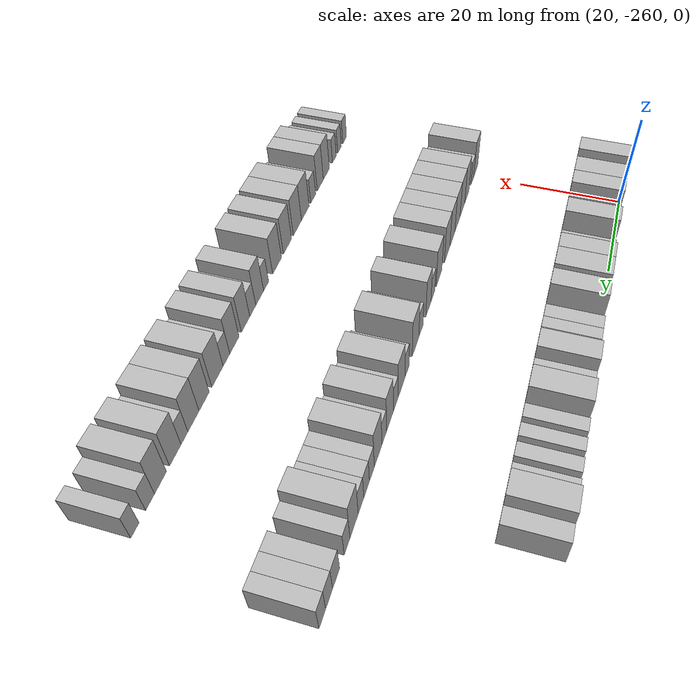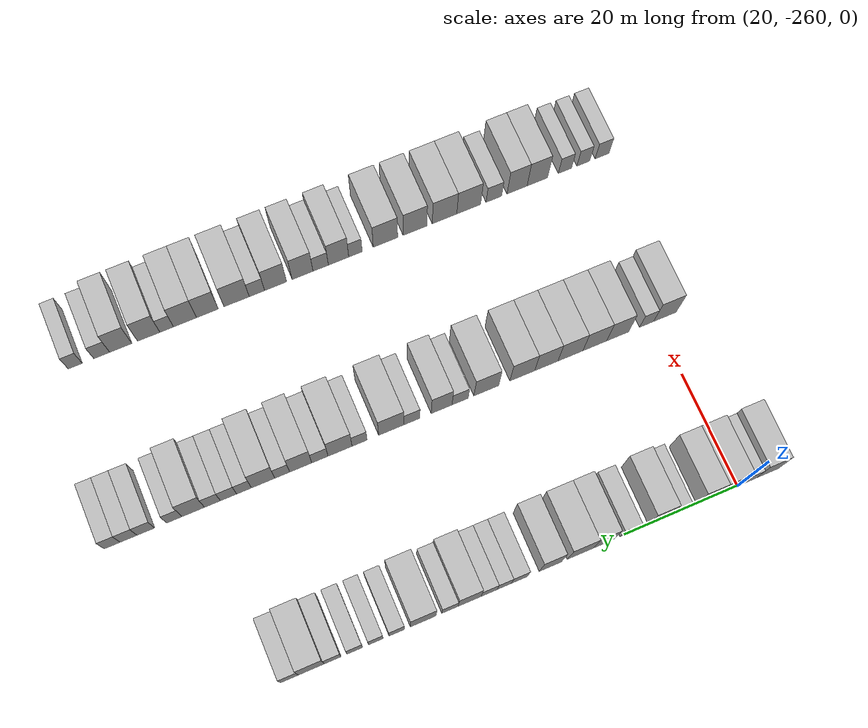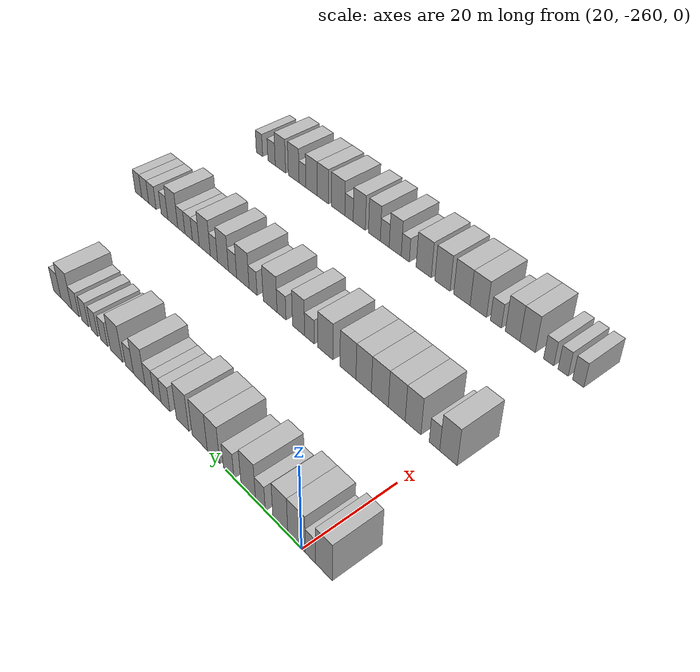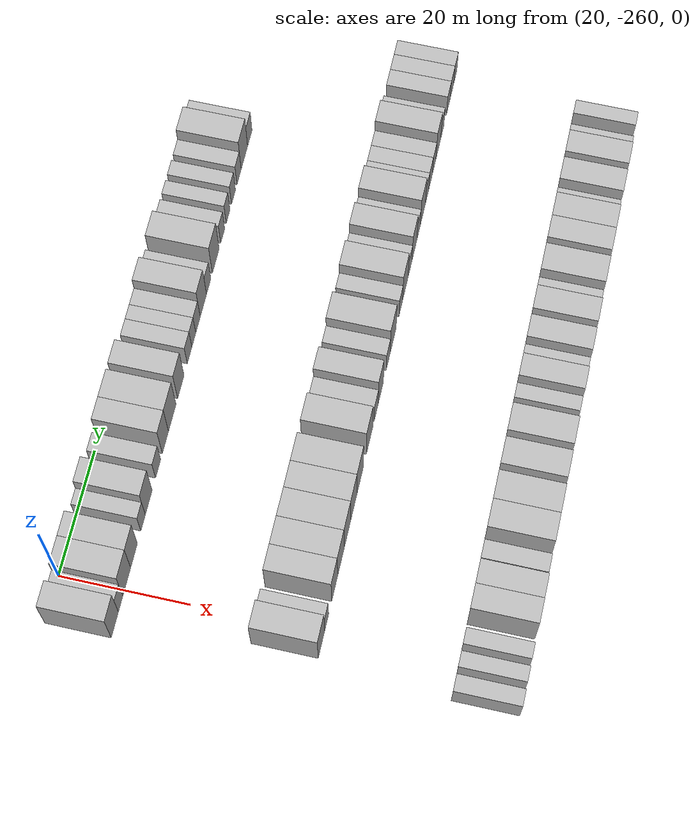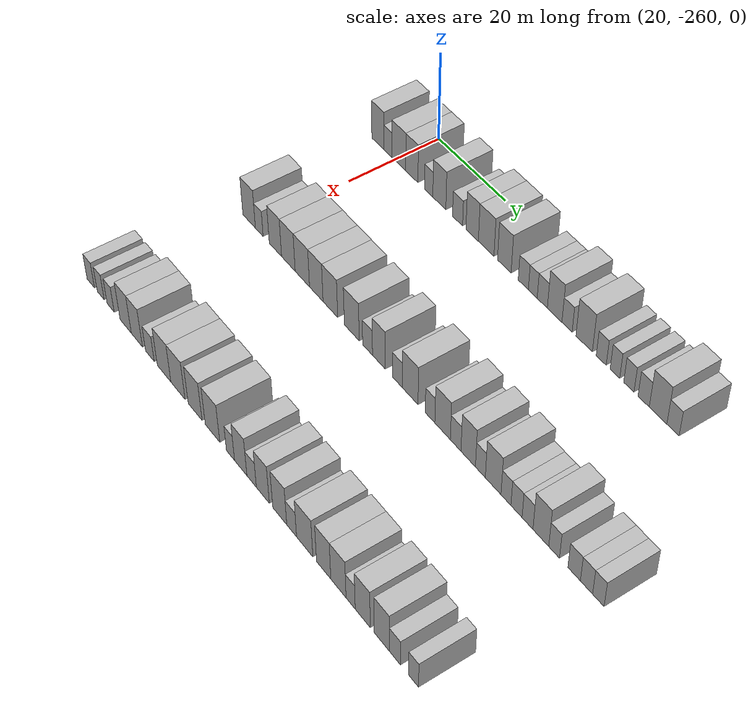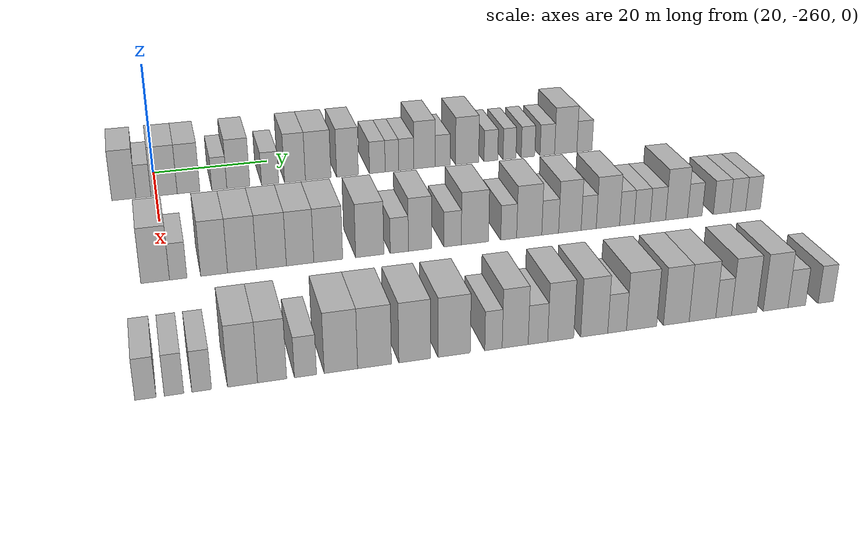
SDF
<sdf version="1.6">
 <world name="default">
  <model name="building_44">
   <static>1</static>
   <pose>25.0000 -265.3323 0 0.000000 0.000000 0.000000</pose>
   <link name="link">
    <pose>0 0 4.50 0 0 0</pose>
    <collision name="collision"><geometry><box><size>10.0000 3.9536 9.0000</size></box></geometry></collision>
    <visual name="visual">
     <cast_shadows>0</cast_shadows>
     <geometry><box><size>10.0000 3.9536 9.0000</size></box></geometry>
     <material>
      <script>
       <uri>model://HANNAS_wall/materials/scripts</uri>
       <uri>model://HANNAS_wall/materials/textures</uri>
       <name>vrc/HANNAS_wall</name>
      </script>
     </material>
    </visual>
   </link>
  </model>
  <model name="building_45">
   <static>1</static>
   <pose>25.0000 -262.1128 0 0.000000 0.000000 0.000000</pose>
   <link name="link">
    <pose>0 0 3.00 0 0 0</pose>
    <collision name="collision"><geometry><box><size>10.0000 2.4854 6.0000</size></box></geometry></collision>
    <visual name="visual">
     <cast_shadows>0</cast_shadows>
     <geometry><box><size>10.0000 2.4854 6.0000</size></box></geometry>
     <material>
      <script>
       <uri>model://HANNAS_wall/materials/scripts</uri>
       <uri>model://HANNAS_wall/materials/textures</uri>
       <name>vrc/HANNAS_wall</name>
      </script>
     </material>
    </visual>
   </link>
  </model>
  <model name="building_46">
   <static>1</static>
   <pose>25.0000 -258.6913 0 0.000000 0.000000 0.000000</pose>
   <link name="link">
    <pose>0 0 4.50 0 0 0</pose>
    <collision name="collision"><geometry><box><size>10.0000 4.3576 9.0000</size></box></geometry></collision>
    <visual name="visual">
     <cast_shadows>0</cast_shadows>
     <geometry><box><size>10.0000 4.3576 9.0000</size></box></geometry>
     <material>
      <script>
       <uri>model://HANNAS_wall/materials/scripts</uri>
       <uri>model://HANNAS_wall/materials/textures</uri>
       <name>vrc/HANNAS_wall</name>
      </script>
     </material>
    </visual>
   </link>
  </model>
  <model name="building_47">
   <static>1</static>
   <pose>25.0000 -254.6119 0 0.000000 0.000000 0.000000</pose>
   <link name="link">
    <pose>0 0 4.50 0 0 0</pose>
    <collision name="collision"><geometry><box><size>10.0000 3.8012 9.0000</size></box></geometry></collision>
    <visual name="visual">
     <cast_shadows>0</cast_shadows>
     <geometry><box><size>10.0000 3.8012 9.0000</size></box></geometry>
     <material>
      <script>
       <uri>model://HANNAS_wall/materials/scripts</uri>
       <uri>model://HANNAS_wall/materials/textures</uri>
       <name>vrc/HANNAS_wall</name>
      </script>
     </material>
    </visual>
   </link>
  </model>
  <model name="building_48">
   <static>1</static>
   <pose>25.0000 -249.4364 0 0.000000 0.000000 0.000000</pose>
   <link name="link">
    <pose>0 0 3.00 0 0 0</pose>
    <collision name="collision"><geometry><box><size>10.0000 2.5499 6.0000</size></box></geometry></collision>
    <visual name="visual">
     <cast_shadows>0</cast_shadows>
     <geometry><box><size>10.0000 2.5499 6.0000</size></box></geometry>
     <material>
      <script>
       <uri>model://HANNAS_wall/materials/scripts</uri>
       <uri>model://HANNAS_wall/materials/textures</uri>
       <name>vrc/HANNAS_wall</name>
      </script>
     </material>
    </visual>
   </link>
  </model>
  <model name="building_49">
   <static>1</static>
   <pose>25.0000 -246.1935 0 0.000000 0.000000 0.000000</pose>
   <link name="link">
    <pose>0 0 4.50 0 0 0</pose>
    <collision name="collision"><geometry><box><size>10.0000 3.9358 9.0000</size></box></geometry></collision>
    <visual name="visual">
     <cast_shadows>0</cast_shadows>
     <geometry><box><size>10.0000 3.9358 9.0000</size></box></geometry>
     <material>
      <script>
       <uri>model://HANNAS_wall/materials/scripts</uri>
       <uri>model://HANNAS_wall/materials/textures</uri>
       <name>vrc/HANNAS_wall</name>
      </script>
     </material>
    </visual>
   </link>
  </model>
  <model name="building_50">
   <static>1</static>
   <pose>25.0000 -240.7367 0 0.000000 0.000000 0.000000</pose>
   <link name="link">
    <pose>0 0 3.00 0 0 0</pose>
    <collision name="collision"><geometry><box><size>10.0000 2.9778 6.0000</size></box></geometry></collision>
    <visual name="visual">
     <cast_shadows>0</cast_shadows>
     <geometry><box><size>10.0000 2.9778 6.0000</size></box></geometry>
     <material>
      <script>
       <uri>model://HANNAS_wall/materials/scripts</uri>
       <uri>model://HANNAS_wall/materials/textures</uri>
       <name>vrc/HANNAS_wall</name>
      </script>
     </material>
    </visual>
   </link>
  </model>
  <model name="building_51">
   <static>1</static>
   <pose>25.0000 -236.4329 0 0.000000 0.000000 0.000000</pose>
   <link name="link">
    <pose>0 0 4.50 0 0 0</pose>
    <collision name="collision"><geometry><box><size>10.0000 3.6297 9.0000</size></box></geometry></collision>
    <visual name="visual">
     <cast_shadows>0</cast_shadows>
     <geometry><box><size>10.0000 3.6297 9.0000</size></box></geometry>
     <material>
      <script>
       <uri>model://HANNAS_wall/materials/scripts</uri>
       <uri>model://HANNAS_wall/materials/textures</uri>
       <name>vrc/HANNAS_wall</name>
      </script>
     </material>
    </visual>
   </link>
  </model>
  <model name="building_52">
   <static>1</static>
   <pose>25.0000 -232.3689 0 0.000000 0.000000 0.000000</pose>
   <link name="link">
    <pose>0 0 4.50 0 0 0</pose>
    <collision name="collision"><geometry><box><size>10.0000 4.4983 9.0000</size></box></geometry></collision>
    <visual name="visual">
     <cast_shadows>0</cast_shadows>
     <geometry><box><size>10.0000 4.4983 9.0000</size></box></geometry>
     <material>
      <script>
       <uri>model://HANNAS_wall/materials/scripts</uri>
       <uri>model://HANNAS_wall/materials/textures</uri>
       <name>vrc/HANNAS_wall</name>
      </script>
     </material>
    </visual>
   </link>
  </model>
  <model name="building_53">
   <static>1</static>
   <pose>25.0000 -227.1894 0 0.000000 0.000000 0.000000</pose>
   <link name="link">
    <pose>0 0 4.50 0 0 0</pose>
    <collision name="collision"><geometry><box><size>10.0000 3.8606 9.0000</size></box></geometry></collision>
    <visual name="visual">
     <cast_shadows>0</cast_shadows>
     <geometry><box><size>10.0000 3.8606 9.0000</size></box></geometry>
     <material>
      <script>
       <uri>model://HANNAS_wall/materials/scripts</uri>
       <uri>model://HANNAS_wall/materials/textures</uri>
       <name>vrc/HANNAS_wall</name>
      </script>
     </material>
    </visual>
   </link>
  </model>
  <model name="building_54">
   <static>1</static>
   <pose>25.0000 -221.8545 0 0.000000 0.000000 0.000000</pose>
   <link name="link">
    <pose>0 0 3.00 0 0 0</pose>
    <collision name="collision"><geometry><box><size>10.0000 2.8092 6.0000</size></box></geometry></collision>
    <visual name="visual">
     <cast_shadows>0</cast_shadows>
     <geometry><box><size>10.0000 2.8092 6.0000</size></box></geometry>
     <material>
      <script>
       <uri>model://HANNAS_wall/materials/scripts</uri>
       <uri>model://HANNAS_wall/materials/textures</uri>
       <name>vrc/HANNAS_wall</name>
      </script>
     </material>
    </visual>
   </link>
  </model>
  <model name="building_55">
   <static>1</static>
   <pose>25.0000 -219.2334 0 0.000000 0.000000 0.000000</pose>
   <link name="link">
    <pose>0 0 3.00 0 0 0</pose>
    <collision name="collision"><geometry><box><size>10.0000 2.4329 6.0000</size></box></geometry></collision>
    <visual name="visual">
     <cast_shadows>0</cast_shadows>
     <geometry><box><size>10.0000 2.4329 6.0000</size></box></geometry>
     <material>
      <script>
       <uri>model://HANNAS_wall/materials/scripts</uri>
       <uri>model://HANNAS_wall/materials/textures</uri>
       <name>vrc/HANNAS_wall</name>
      </script>
     </material>
    </visual>
   </link>
  </model>
  <model name="building_56">
   <static>1</static>
   <pose>25.0000 -216.6322 0 0.000000 0.000000 0.000000</pose>
   <link name="link">
    <pose>0 0 3.00 0 0 0</pose>
    <collision name="collision"><geometry><box><size>10.0000 2.7696 6.0000</size></box></geometry></collision>
    <visual name="visual">
     <cast_shadows>0</cast_shadows>
     <geometry><box><size>10.0000 2.7696 6.0000</size></box></geometry>
     <material>
      <script>
       <uri>model://HANNAS_wall/materials/scripts</uri>
       <uri>model://HANNAS_wall/materials/textures</uri>
       <name>vrc/HANNAS_wall</name>
      </script>
     </material>
    </visual>
   </link>
  </model>
  <model name="building_57">
   <static>1</static>
   <pose>25.0000 -213.2837 0 0.000000 0.000000 0.000000</pose>
   <link name="link">
    <pose>0 0 4.50 0 0 0</pose>
    <collision name="collision"><geometry><box><size>10.0000 3.9273 9.0000</size></box></geometry></collision>
    <visual name="visual">
     <cast_shadows>0</cast_shadows>
     <geometry><box><size>10.0000 3.9273 9.0000</size></box></geometry>
     <material>
      <script>
       <uri>model://HANNAS_wall/materials/scripts</uri>
       <uri>model://HANNAS_wall/materials/textures</uri>
       <name>vrc/HANNAS_wall</name>
      </script>
     </material>
    </visual>
   </link>
  </model>
  <model name="building_58">
   <static>1</static>
   <pose>25.0000 -209.9612 0 0.000000 0.000000 0.000000</pose>
   <link name="link">
    <pose>0 0 3.00 0 0 0</pose>
    <collision name="collision"><geometry><box><size>10.0000 2.7176 6.0000</size></box></geometry></collision>
    <visual name="visual">
     <cast_shadows>0</cast_shadows>
     <geometry><box><size>10.0000 2.7176 6.0000</size></box></geometry>
     <material>
      <script>
       <uri>model://HANNAS_wall/materials/scripts</uri>
       <uri>model://HANNAS_wall/materials/textures</uri>
       <name>vrc/HANNAS_wall</name>
      </script>
     </material>
    </visual>
   </link>
  </model>
  <model name="building_59">
   <static>1</static>
   <pose>25.0000 -205.4459 0 0.000000 0.000000 0.000000</pose>
   <link name="link">
    <pose>0 0 4.50 0 0 0</pose>
    <collision name="collision"><geometry><box><size>10.0000 4.3130 9.0000</size></box></geometry></collision>
    <visual name="visual">
     <cast_shadows>0</cast_shadows>
     <geometry><box><size>10.0000 4.3130 9.0000</size></box></geometry>
     <material>
      <script>
       <uri>model://HANNAS_wall/materials/scripts</uri>
       <uri>model://HANNAS_wall/materials/textures</uri>
       <name>vrc/HANNAS_wall</name>
      </script>
     </material>
    </visual>
   </link>
  </model>
  <model name="building_60">
   <static>1</static>
   <pose>25.0000 -201.0046 0 0.000000 0.000000 0.000000</pose>
   <link name="link">
    <pose>0 0 3.00 0 0 0</pose>
    <collision name="collision"><geometry><box><size>10.0000 2.5697 6.0000</size></box></geometry></collision>
    <visual name="visual">
     <cast_shadows>0</cast_shadows>
     <geometry><box><size>10.0000 2.5697 6.0000</size></box></geometry>
     <material>
      <script>
       <uri>model://HANNAS_wall/materials/scripts</uri>
       <uri>model://HANNAS_wall/materials/textures</uri>
       <name>vrc/HANNAS_wall</name>
      </script>
     </material>
    </visual>
   </link>
  </model>
  <model name="building_61">
   <static>1</static>
   <pose>25.0000 -197.4994 0 0.000000 0.000000 0.000000</pose>
   <link name="link">
    <pose>0 0 3.00 0 0 0</pose>
    <collision name="collision"><geometry><box><size>10.0000 2.4407 6.0000</size></box></geometry></collision>
    <visual name="visual">
     <cast_shadows>0</cast_shadows>
     <geometry><box><size>10.0000 2.4407 6.0000</size></box></geometry>
     <material>
      <script>
       <uri>model://HANNAS_wall/materials/scripts</uri>
       <uri>model://HANNAS_wall/materials/textures</uri>
       <name>vrc/HANNAS_wall</name>
      </script>
     </material>
    </visual>
   </link>
  </model>
  <model name="building_62">
   <static>1</static>
   <pose>25.0000 -193.9862 0 0.000000 0.000000 0.000000</pose>
   <link name="link">
    <pose>0 0 3.00 0 0 0</pose>
    <collision name="collision"><geometry><box><size>10.0000 2.5858 6.0000</size></box></geometry></collision>
    <visual name="visual">
     <cast_shadows>0</cast_shadows>
     <geometry><box><size>10.0000 2.5858 6.0000</size></box></geometry>
     <material>
      <script>
       <uri>model://HANNAS_wall/materials/scripts</uri>
       <uri>model://HANNAS_wall/materials/textures</uri>
       <name>vrc/HANNAS_wall</name>
      </script>
     </material>
    </visual>
   </link>
  </model>
  <model name="building_63">
   <static>1</static>
   <pose>25.0000 -190.2982 0 0.000000 0.000000 0.000000</pose>
   <link name="link">
    <pose>0 0 3.00 0 0 0</pose>
    <collision name="collision"><geometry><box><size>10.0000 2.7902 6.0000</size></box></geometry></collision>
    <visual name="visual">
     <cast_shadows>0</cast_shadows>
     <geometry><box><size>10.0000 2.7902 6.0000</size></box></geometry>
     <material>
      <script>
       <uri>model://HANNAS_wall/materials/scripts</uri>
       <uri>model://HANNAS_wall/materials/textures</uri>
       <name>vrc/HANNAS_wall</name>
      </script>
     </material>
    </visual>
   </link>
  </model>
  <model name="building_64">
   <static>1</static>
   <pose>25.0000 -186.7530 0 0.000000 0.000000 0.000000</pose>
   <link name="link">
    <pose>0 0 4.50 0 0 0</pose>
    <collision name="collision"><geometry><box><size>10.0000 4.3001 9.0000</size></box></geometry></collision>
    <visual name="visual">
     <cast_shadows>0</cast_shadows>
     <geometry><box><size>10.0000 4.3001 9.0000</size></box></geometry>
     <material>
      <script>
       <uri>model://HANNAS_wall/materials/scripts</uri>
       <uri>model://HANNAS_wall/materials/textures</uri>
       <name>vrc/HANNAS_wall</name>
      </script>
     </material>
    </visual>
   </link>
  </model>
  <model name="building_65">
   <static>1</static>
   <pose>25.0000 -183.1248 0 0.000000 0.000000 0.000000</pose>
   <link name="link">
    <pose>0 0 3.00 0 0 0</pose>
    <collision name="collision"><geometry><box><size>10.0000 2.9565 6.0000</size></box></geometry></collision>
    <visual name="visual">
     <cast_shadows>0</cast_shadows>
     <geometry><box><size>10.0000 2.9565 6.0000</size></box></geometry>
     <material>
      <script>
       <uri>model://HANNAS_wall/materials/scripts</uri>
       <uri>model://HANNAS_wall/materials/textures</uri>
       <name>vrc/HANNAS_wall</name>
      </script>
     </material>
    </visual>
   </link>
  </model>
  <model name="building_273">
   <static>1</static>
   <pose>55.0000 -261.5980 0 0.000000 0.000000 0.000000</pose>
   <link name="link">
    <pose>0 0 4.50 0 0 0</pose>
    <collision name="collision"><geometry><box><size>10.0000 4.1426 9.0000</size></box></geometry></collision>
    <visual name="visual">
     <cast_shadows>0</cast_shadows>
     <geometry><box><size>10.0000 4.1426 9.0000</size></box></geometry>
     <material>
      <script>
       <uri>model://HANNAS_wall/materials/scripts</uri>
       <uri>model://HANNAS_wall/materials/textures</uri>
       <name>vrc/HANNAS_wall</name>
      </script>
     </material>
    </visual>
   </link>
  </model>
  <model name="building_274">
   <static>1</static>
   <pose>55.0000 -258.2585 0 0.000000 0.000000 0.000000</pose>
   <link name="link">
    <pose>0 0 3.00 0 0 0</pose>
    <collision name="collision"><geometry><box><size>10.0000 2.5364 6.0000</size></box></geometry></collision>
    <visual name="visual">
     <cast_shadows>0</cast_shadows>
     <geometry><box><size>10.0000 2.5364 6.0000</size></box></geometry>
     <material>
      <script>
       <uri>model://HANNAS_wall/materials/scripts</uri>
       <uri>model://HANNAS_wall/materials/textures</uri>
       <name>vrc/HANNAS_wall</name>
      </script>
     </material>
    </visual>
   </link>
  </model>
  <model name="building_275">
   <static>1</static>
   <pose>55.0000 -253.0090 0 0.000000 0.000000 0.000000</pose>
   <link name="link">
    <pose>0 0 4.50 0 0 0</pose>
    <collision name="collision"><geometry><box><size>10.0000 3.9625 9.0000</size></box></geometry></collision>
    <visual name="visual">
     <cast_shadows>0</cast_shadows>
     <geometry><box><size>10.0000 3.9625 9.0000</size></box></geometry>
     <material>
      <script>
       <uri>model://HANNAS_wall/materials/scripts</uri>
       <uri>model://HANNAS_wall/materials/textures</uri>
       <name>vrc/HANNAS_wall</name>
      </script>
     </material>
    </visual>
   </link>
  </model>
  <model name="building_276">
   <static>1</static>
   <pose>55.0000 -248.8674 0 0.000000 0.000000 0.000000</pose>
   <link name="link">
    <pose>0 0 4.50 0 0 0</pose>
    <collision name="collision"><geometry><box><size>10.0000 4.3207 9.0000</size></box></geometry></collision>
    <visual name="visual">
     <cast_shadows>0</cast_shadows>
     <geometry><box><size>10.0000 4.3207 9.0000</size></box></geometry>
     <material>
      <script>
       <uri>model://HANNAS_wall/materials/scripts</uri>
       <uri>model://HANNAS_wall/materials/textures</uri>
       <name>vrc/HANNAS_wall</name>
      </script>
     </material>
    </visual>
   </link>
  </model>
  <model name="building_277">
   <static>1</static>
   <pose>55.0000 -244.4660 0 0.000000 0.000000 0.000000</pose>
   <link name="link">
    <pose>0 0 4.50 0 0 0</pose>
    <collision name="collision"><geometry><box><size>10.0000 4.4821 9.0000</size></box></geometry></collision>
    <visual name="visual">
     <cast_shadows>0</cast_shadows>
     <geometry><box><size>10.0000 4.4821 9.0000</size></box></geometry>
     <material>
      <script>
       <uri>model://HANNAS_wall/materials/scripts</uri>
       <uri>model://HANNAS_wall/materials/textures</uri>
       <name>vrc/HANNAS_wall</name>
      </script>
     </material>
    </visual>
   </link>
  </model>
  <model name="building_278">
   <static>1</static>
   <pose>55.0000 -240.1419 0 0.000000 0.000000 0.000000</pose>
   <link name="link">
    <pose>0 0 4.50 0 0 0</pose>
    <collision name="collision"><geometry><box><size>10.0000 4.1661 9.0000</size></box></geometry></collision>
    <visual name="visual">
     <cast_shadows>0</cast_shadows>
     <geometry><box><size>10.0000 4.1661 9.0000</size></box></geometry>
     <material>
      <script>
       <uri>model://HANNAS_wall/materials/scripts</uri>
       <uri>model://HANNAS_wall/materials/textures</uri>
       <name>vrc/HANNAS_wall</name>
      </script>
     </material>
    </visual>
   </link>
  </model>
  <model name="building_279">
   <static>1</static>
   <pose>55.0000 -235.8365 0 0.000000 0.000000 0.000000</pose>
   <link name="link">
    <pose>0 0 4.50 0 0 0</pose>
    <collision name="collision"><geometry><box><size>10.0000 4.4446 9.0000</size></box></geometry></collision>
    <visual name="visual">
     <cast_shadows>0</cast_shadows>
     <geometry><box><size>10.0000 4.4446 9.0000</size></box></geometry>
     <material>
      <script>
       <uri>model://HANNAS_wall/materials/scripts</uri>
       <uri>model://HANNAS_wall/materials/textures</uri>
       <name>vrc/HANNAS_wall</name>
      </script>
     </material>
    </visual>
   </link>
  </model>
  <model name="building_280">
   <static>1</static>
   <pose>55.0000 -229.4129 0 0.000000 0.000000 0.000000</pose>
   <link name="link">
    <pose>0 0 4.50 0 0 0</pose>
    <collision name="collision"><geometry><box><size>10.0000 4.4026 9.0000</size></box></geometry></collision>
    <visual name="visual">
     <cast_shadows>0</cast_shadows>
     <geometry><box><size>10.0000 4.4026 9.0000</size></box></geometry>
     <material>
      <script>
       <uri>model://HANNAS_wall/materials/scripts</uri>
       <uri>model://HANNAS_wall/materials/textures</uri>
       <name>vrc/HANNAS_wall</name>
      </script>
     </material>
    </visual>
   </link>
  </model>
  <model name="building_281">
   <static>1</static>
   <pose>55.0000 -224.7786 0 0.000000 0.000000 0.000000</pose>
   <link name="link">
    <pose>0 0 3.00 0 0 0</pose>
    <collision name="collision"><geometry><box><size>10.0000 2.8658 6.0000</size></box></geometry></collision>
    <visual name="visual">
     <cast_shadows>0</cast_shadows>
     <geometry><box><size>10.0000 2.8658 6.0000</size></box></geometry>
     <material>
      <script>
       <uri>model://HANNAS_wall/materials/scripts</uri>
       <uri>model://HANNAS_wall/materials/textures</uri>
       <name>vrc/HANNAS_wall</name>
      </script>
     </material>
    </visual>
   </link>
  </model>
  <model name="building_282">
   <static>1</static>
   <pose>55.0000 -221.5113 0 0.000000 0.000000 0.000000</pose>
   <link name="link">
    <pose>0 0 4.50 0 0 0</pose>
    <collision name="collision"><geometry><box><size>10.0000 3.6690 9.0000</size></box></geometry></collision>
    <visual name="visual">
     <cast_shadows>0</cast_shadows>
     <geometry><box><size>10.0000 3.6690 9.0000</size></box></geometry>
     <material>
      <script>
       <uri>model://HANNAS_wall/materials/scripts</uri>
       <uri>model://HANNAS_wall/materials/textures</uri>
       <name>vrc/HANNAS_wall</name>
      </script>
     </material>
    </visual>
   </link>
  </model>
  <model name="building_283">
   <static>1</static>
   <pose>55.0000 -216.2841 0 0.000000 0.000000 0.000000</pose>
   <link name="link">
    <pose>0 0 3.00 0 0 0</pose>
    <collision name="collision"><geometry><box><size>10.0000 2.7854 6.0000</size></box></geometry></collision>
    <visual name="visual">
     <cast_shadows>0</cast_shadows>
     <geometry><box><size>10.0000 2.7854 6.0000</size></box></geometry>
     <material>
      <script>
       <uri>model://HANNAS_wall/materials/scripts</uri>
       <uri>model://HANNAS_wall/materials/textures</uri>
       <name>vrc/HANNAS_wall</name>
      </script>
     </material>
    </visual>
   </link>
  </model>
  <model name="building_284">
   <static>1</static>
   <pose>55.0000 -212.6791 0 0.000000 0.000000 0.000000</pose>
   <link name="link">
    <pose>0 0 4.50 0 0 0</pose>
    <collision name="collision"><geometry><box><size>10.0000 4.4247 9.0000</size></box></geometry></collision>
    <visual name="visual">
     <cast_shadows>0</cast_shadows>
     <geometry><box><size>10.0000 4.4247 9.0000</size></box></geometry>
     <material>
      <script>
       <uri>model://HANNAS_wall/materials/scripts</uri>
       <uri>model://HANNAS_wall/materials/textures</uri>
       <name>vrc/HANNAS_wall</name>
      </script>
     </material>
    </visual>
   </link>
  </model>
  <model name="building_285">
   <static>1</static>
   <pose>55.0000 -207.1613 0 0.000000 0.000000 0.000000</pose>
   <link name="link">
    <pose>0 0 3.00 0 0 0</pose>
    <collision name="collision"><geometry><box><size>10.0000 2.6110 6.0000</size></box></geometry></collision>
    <visual name="visual">
     <cast_shadows>0</cast_shadows>
     <geometry><box><size>10.0000 2.6110 6.0000</size></box></geometry>
     <material>
      <script>
       <uri>model://HANNAS_wall/materials/scripts</uri>
       <uri>model://HANNAS_wall/materials/textures</uri>
       <name>vrc/HANNAS_wall</name>
      </script>
     </material>
    </visual>
   </link>
  </model>
  <model name="building_286">
   <static>1</static>
   <pose>55.0000 -203.7713 0 0.000000 0.000000 0.000000</pose>
   <link name="link">
    <pose>0 0 4.50 0 0 0</pose>
    <collision name="collision"><geometry><box><size>10.0000 4.1690 9.0000</size></box></geometry></collision>
    <visual name="visual">
     <cast_shadows>0</cast_shadows>
     <geometry><box><size>10.0000 4.1690 9.0000</size></box></geometry>
     <material>
      <script>
       <uri>model://HANNAS_wall/materials/scripts</uri>
       <uri>model://HANNAS_wall/materials/textures</uri>
       <name>vrc/HANNAS_wall</name>
      </script>
     </material>
    </visual>
   </link>
  </model>
  <model name="building_287">
   <static>1</static>
   <pose>55.0000 -200.2810 0 0.000000 0.000000 0.000000</pose>
   <link name="link">
    <pose>0 0 3.00 0 0 0</pose>
    <collision name="collision"><geometry><box><size>10.0000 2.8117 6.0000</size></box></geometry></collision>
    <visual name="visual">
     <cast_shadows>0</cast_shadows>
     <geometry><box><size>10.0000 2.8117 6.0000</size></box></geometry>
     <material>
      <script>
       <uri>model://HANNAS_wall/materials/scripts</uri>
       <uri>model://HANNAS_wall/materials/textures</uri>
       <name>vrc/HANNAS_wall</name>
      </script>
     </material>
    </visual>
   </link>
  </model>
  <model name="building_288">
   <static>1</static>
   <pose>55.0000 -196.9755 0 0.000000 0.000000 0.000000</pose>
   <link name="link">
    <pose>0 0 4.50 0 0 0</pose>
    <collision name="collision"><geometry><box><size>10.0000 3.7993 9.0000</size></box></geometry></collision>
    <visual name="visual">
     <cast_shadows>0</cast_shadows>
     <geometry><box><size>10.0000 3.7993 9.0000</size></box></geometry>
     <material>
      <script>
       <uri>model://HANNAS_wall/materials/scripts</uri>
       <uri>model://HANNAS_wall/materials/textures</uri>
       <name>vrc/HANNAS_wall</name>
      </script>
     </material>
    </visual>
   </link>
  </model>
  <model name="building_289">
   <static>1</static>
   <pose>55.0000 -193.7954 0 0.000000 0.000000 0.000000</pose>
   <link name="link">
    <pose>0 0 3.00 0 0 0</pose>
    <collision name="collision"><geometry><box><size>10.0000 2.5610 6.0000</size></box></geometry></collision>
    <visual name="visual">
     <cast_shadows>0</cast_shadows>
     <geometry><box><size>10.0000 2.5610 6.0000</size></box></geometry>
     <material>
      <script>
       <uri>model://HANNAS_wall/materials/scripts</uri>
       <uri>model://HANNAS_wall/materials/textures</uri>
       <name>vrc/HANNAS_wall</name>
      </script>
     </material>
    </visual>
   </link>
  </model>
  <model name="building_290">
   <static>1</static>
   <pose>55.0000 -190.5140 0 0.000000 0.000000 0.000000</pose>
   <link name="link">
    <pose>0 0 4.50 0 0 0</pose>
    <collision name="collision"><geometry><box><size>10.0000 4.0018 9.0000</size></box></geometry></collision>
    <visual name="visual">
     <cast_shadows>0</cast_shadows>
     <geometry><box><size>10.0000 4.0018 9.0000</size></box></geometry>
     <material>
      <script>
       <uri>model://HANNAS_wall/materials/scripts</uri>
       <uri>model://HANNAS_wall/materials/textures</uri>
       <name>vrc/HANNAS_wall</name>
      </script>
     </material>
    </visual>
   </link>
  </model>
  <model name="building_291">
   <static>1</static>
   <pose>55.0000 -187.2517 0 0.000000 0.000000 0.000000</pose>
   <link name="link">
    <pose>0 0 3.00 0 0 0</pose>
    <collision name="collision"><geometry><box><size>10.0000 2.5227 6.0000</size></box></geometry></collision>
    <visual name="visual">
     <cast_shadows>0</cast_shadows>
     <geometry><box><size>10.0000 2.5227 6.0000</size></box></geometry>
     <material>
      <script>
       <uri>model://HANNAS_wall/materials/scripts</uri>
       <uri>model://HANNAS_wall/materials/textures</uri>
       <name>vrc/HANNAS_wall</name>
      </script>
     </material>
    </visual>
   </link>
  </model>
  <model name="building_292">
   <static>1</static>
   <pose>55.0000 -184.6021 0 0.000000 0.000000 0.000000</pose>
   <link name="link">
    <pose>0 0 3.00 0 0 0</pose>
    <collision name="collision"><geometry><box><size>10.0000 2.7766 6.0000</size></box></geometry></collision>
    <visual name="visual">
     <cast_shadows>0</cast_shadows>
     <geometry><box><size>10.0000 2.7766 6.0000</size></box></geometry>
     <material>
      <script>
       <uri>model://HANNAS_wall/materials/scripts</uri>
       <uri>model://HANNAS_wall/materials/textures</uri>
       <name>vrc/HANNAS_wall</name>
      </script>
     </material>
    </visual>
   </link>
  </model>
  <model name="building_293">
   <static>1</static>
   <pose>55.0000 -181.8649 0 0.000000 0.000000 0.000000</pose>
   <link name="link">
    <pose>0 0 3.00 0 0 0</pose>
    <collision name="collision"><geometry><box><size>10.0000 2.6977 6.0000</size></box></geometry></collision>
    <visual name="visual">
     <cast_shadows>0</cast_shadows>
     <geometry><box><size>10.0000 2.6977 6.0000</size></box></geometry>
     <material>
      <script>
       <uri>model://HANNAS_wall/materials/scripts</uri>
       <uri>model://HANNAS_wall/materials/textures</uri>
       <name>vrc/HANNAS_wall</name>
      </script>
     </material>
    </visual>
   </link>
  </model>
  <model name="building_294">
   <static>1</static>
   <pose>55.0000 -178.5905 0 0.000000 0.000000 0.000000</pose>
   <link name="link">
    <pose>0 0 4.50 0 0 0</pose>
    <collision name="collision"><geometry><box><size>10.0000 3.8512 9.0000</size></box></geometry></collision>
    <visual name="visual">
     <cast_shadows>0</cast_shadows>
     <geometry><box><size>10.0000 3.8512 9.0000</size></box></geometry>
     <material>
      <script>
       <uri>model://HANNAS_wall/materials/scripts</uri>
       <uri>model://HANNAS_wall/materials/textures</uri>
       <name>vrc/HANNAS_wall</name>
      </script>
     </material>
    </visual>
   </link>
  </model>
  <model name="building_295">
   <static>1</static>
   <pose>55.0000 -175.3719 0 0.000000 0.000000 0.000000</pose>
   <link name="link">
    <pose>0 0 3.00 0 0 0</pose>
    <collision name="collision"><geometry><box><size>10.0000 2.5860 6.0000</size></box></geometry></collision>
    <visual name="visual">
     <cast_shadows>0</cast_shadows>
     <geometry><box><size>10.0000 2.5860 6.0000</size></box></geometry>
     <material>
      <script>
       <uri>model://HANNAS_wall/materials/scripts</uri>
       <uri>model://HANNAS_wall/materials/textures</uri>
       <name>vrc/HANNAS_wall</name>
      </script>
     </material>
    </visual>
   </link>
  </model>
  <model name="building_296">
   <static>1</static>
   <pose>55.0000 -170.5999 0 0.000000 0.000000 0.000000</pose>
   <link name="link">
    <pose>0 0 3.00 0 0 0</pose>
    <collision name="collision"><geometry><box><size>10.0000 2.9580 6.0000</size></box></geometry></collision>
    <visual name="visual">
     <cast_shadows>0</cast_shadows>
     <geometry><box><size>10.0000 2.9580 6.0000</size></box></geometry>
     <material>
      <script>
       <uri>model://HANNAS_wall/materials/scripts</uri>
       <uri>model://HANNAS_wall/materials/textures</uri>
       <name>vrc/HANNAS_wall</name>
      </script>
     </material>
    </visual>
   </link>
  </model>
  <model name="building_297">
   <static>1</static>
   <pose>55.0000 -167.6947 0 0.000000 0.000000 0.000000</pose>
   <link name="link">
    <pose>0 0 3.00 0 0 0</pose>
    <collision name="collision"><geometry><box><size>10.0000 2.8525 6.0000</size></box></geometry></collision>
    <visual name="visual">
     <cast_shadows>0</cast_shadows>
     <geometry><box><size>10.0000 2.8525 6.0000</size></box></geometry>
     <material>
      <script>
       <uri>model://HANNAS_wall/materials/scripts</uri>
       <uri>model://HANNAS_wall/materials/textures</uri>
       <name>vrc/HANNAS_wall</name>
      </script>
     </material>
    </visual>
   </link>
  </model>
  <model name="building_298">
   <static>1</static>
   <pose>55.0000 -164.9405 0 0.000000 0.000000 0.000000</pose>
   <link name="link">
    <pose>0 0 3.00 0 0 0</pose>
    <collision name="collision"><geometry><box><size>10.0000 2.6560 6.0000</size></box></geometry></collision>
    <visual name="visual">
     <cast_shadows>0</cast_shadows>
     <geometry><box><size>10.0000 2.6560 6.0000</size></box></geometry>
     <material>
      <script>
       <uri>model://HANNAS_wall/materials/scripts</uri>
       <uri>model://HANNAS_wall/materials/textures</uri>
       <name>vrc/HANNAS_wall</name>
      </script>
     </material>
    </visual>
   </link>
  </model>
  <model name="building_504">
   <static>1</static>
   <pose>85.0000 -264.2029 0 0.000000 0.000000 0.000000</pose>
   <link name="link">
    <pose>0 0 3.00 0 0 0</pose>
    <collision name="collision"><geometry><box><size>10.0000 2.6078 6.0000</size></box></geometry></collision>
    <visual name="visual">
     <cast_shadows>0</cast_shadows>
     <geometry><box><size>10.0000 2.6078 6.0000</size></box></geometry>
     <material>
      <script>
       <uri>model://HANNAS_wall/materials/scripts</uri>
       <uri>model://HANNAS_wall/materials/textures</uri>
       <name>vrc/HANNAS_wall</name>
      </script>
     </material>
    </visual>
   </link>
  </model>
  <model name="building_505">
   <static>1</static>
   <pose>85.0000 -260.6933 0 0.000000 0.000000 0.000000</pose>
   <link name="link">
    <pose>0 0 3.00 0 0 0</pose>
    <collision name="collision"><geometry><box><size>10.0000 2.4114 6.0000</size></box></geometry></collision>
    <visual name="visual">
     <cast_shadows>0</cast_shadows>
     <geometry><box><size>10.0000 2.4114 6.0000</size></box></geometry>
     <material>
      <script>
       <uri>model://HANNAS_wall/materials/scripts</uri>
       <uri>model://HANNAS_wall/materials/textures</uri>
       <name>vrc/HANNAS_wall</name>
      </script>
     </material>
    </visual>
   </link>
  </model>
  <model name="building_506">
   <static>1</static>
   <pose>85.0000 -257.2569 0 0.000000 0.000000 0.000000</pose>
   <link name="link">
    <pose>0 0 3.00 0 0 0</pose>
    <collision name="collision"><geometry><box><size>10.0000 2.4614 6.0000</size></box></geometry></collision>
    <visual name="visual">
     <cast_shadows>0</cast_shadows>
     <geometry><box><size>10.0000 2.4614 6.0000</size></box></geometry>
     <material>
      <script>
       <uri>model://HANNAS_wall/materials/scripts</uri>
       <uri>model://HANNAS_wall/materials/textures</uri>
       <name>vrc/HANNAS_wall</name>
      </script>
     </material>
    </visual>
   </link>
  </model>
  <model name="building_507">
   <static>1</static>
   <pose>85.0000 -252.1188 0 0.000000 0.000000 0.000000</pose>
   <link name="link">
    <pose>0 0 4.50 0 0 0</pose>
    <collision name="collision"><geometry><box><size>10.0000 3.8149 9.0000</size></box></geometry></collision>
    <visual name="visual">
     <cast_shadows>0</cast_shadows>
     <geometry><box><size>10.0000 3.8149 9.0000</size></box></geometry>
     <material>
      <script>
       <uri>model://HANNAS_wall/materials/scripts</uri>
       <uri>model://HANNAS_wall/materials/textures</uri>
       <name>vrc/HANNAS_wall</name>
      </script>
     </material>
    </visual>
   </link>
  </model>
  <model name="building_508">
   <static>1</static>
   <pose>85.0000 -248.3513 0 0.000000 0.000000 0.000000</pose>
   <link name="link">
    <pose>0 0 4.50 0 0 0</pose>
    <collision name="collision"><geometry><box><size>10.0000 3.7202 9.0000</size></box></geometry></collision>
    <visual name="visual">
     <cast_shadows>0</cast_shadows>
     <geometry><box><size>10.0000 3.7202 9.0000</size></box></geometry>
     <material>
      <script>
       <uri>model://HANNAS_wall/materials/scripts</uri>
       <uri>model://HANNAS_wall/materials/textures</uri>
       <name>vrc/HANNAS_wall</name>
      </script>
     </material>
    </visual>
   </link>
  </model>
  <model name="building_509">
   <static>1</static>
   <pose>85.0000 -244.0579 0 0.000000 0.000000 0.000000</pose>
   <link name="link">
    <pose>0 0 3.00 0 0 0</pose>
    <collision name="collision"><geometry><box><size>10.0000 2.8666 6.0000</size></box></geometry></collision>
    <visual name="visual">
     <cast_shadows>0</cast_shadows>
     <geometry><box><size>10.0000 2.8666 6.0000</size></box></geometry>
     <material>
      <script>
       <uri>model://HANNAS_wall/materials/scripts</uri>
       <uri>model://HANNAS_wall/materials/textures</uri>
       <name>vrc/HANNAS_wall</name>
      </script>
     </material>
    </visual>
   </link>
  </model>
  <model name="building_510">
   <static>1</static>
   <pose>85.0000 -239.4318 0 0.000000 0.000000 0.000000</pose>
   <link name="link">
    <pose>0 0 4.50 0 0 0</pose>
    <collision name="collision"><geometry><box><size>10.0000 4.3855 9.0000</size></box></geometry></collision>
    <visual name="visual">
     <cast_shadows>0</cast_shadows>
     <geometry><box><size>10.0000 4.3855 9.0000</size></box></geometry>
     <material>
      <script>
       <uri>model://HANNAS_wall/materials/scripts</uri>
       <uri>model://HANNAS_wall/materials/textures</uri>
       <name>vrc/HANNAS_wall</name>
      </script>
     </material>
    </visual>
   </link>
  </model>
  <model name="building_511">
   <static>1</static>
   <pose>85.0000 -234.9895 0 0.000000 0.000000 0.000000</pose>
   <link name="link">
    <pose>0 0 4.50 0 0 0</pose>
    <collision name="collision"><geometry><box><size>10.0000 4.4991 9.0000</size></box></geometry></collision>
    <visual name="visual">
     <cast_shadows>0</cast_shadows>
     <geometry><box><size>10.0000 4.4991 9.0000</size></box></geometry>
     <material>
      <script>
       <uri>model://HANNAS_wall/materials/scripts</uri>
       <uri>model://HANNAS_wall/materials/textures</uri>
       <name>vrc/HANNAS_wall</name>
      </script>
     </material>
    </visual>
   </link>
  </model>
  <model name="building_512">
   <static>1</static>
   <pose>85.0000 -229.5887 0 0.000000 0.000000 0.000000</pose>
   <link name="link">
    <pose>0 0 4.50 0 0 0</pose>
    <collision name="collision"><geometry><box><size>10.0000 4.3026 9.0000</size></box></geometry></collision>
    <visual name="visual">
     <cast_shadows>0</cast_shadows>
     <geometry><box><size>10.0000 4.3026 9.0000</size></box></geometry>
     <material>
      <script>
       <uri>model://HANNAS_wall/materials/scripts</uri>
       <uri>model://HANNAS_wall/materials/textures</uri>
       <name>vrc/HANNAS_wall</name>
      </script>
     </material>
    </visual>
   </link>
  </model>
  <model name="building_513">
   <static>1</static>
   <pose>85.0000 -224.2256 0 0.000000 0.000000 0.000000</pose>
   <link name="link">
    <pose>0 0 4.50 0 0 0</pose>
    <collision name="collision"><geometry><box><size>10.0000 4.4237 9.0000</size></box></geometry></collision>
    <visual name="visual">
     <cast_shadows>0</cast_shadows>
     <geometry><box><size>10.0000 4.4237 9.0000</size></box></geometry>
     <material>
      <script>
       <uri>model://HANNAS_wall/materials/scripts</uri>
       <uri>model://HANNAS_wall/materials/textures</uri>
       <name>vrc/HANNAS_wall</name>
      </script>
     </material>
    </visual>
   </link>
  </model>
  <model name="building_514">
   <static>1</static>
   <pose>85.0000 -218.8041 0 0.000000 0.000000 0.000000</pose>
   <link name="link">
    <pose>0 0 3.00 0 0 0</pose>
    <collision name="collision"><geometry><box><size>10.0000 2.4193 6.0000</size></box></geometry></collision>
    <visual name="visual">
     <cast_shadows>0</cast_shadows>
     <geometry><box><size>10.0000 2.4193 6.0000</size></box></geometry>
     <material>
      <script>
       <uri>model://HANNAS_wall/materials/scripts</uri>
       <uri>model://HANNAS_wall/materials/textures</uri>
       <name>vrc/HANNAS_wall</name>
      </script>
     </material>
    </visual>
   </link>
  </model>
  <model name="building_515">
   <static>1</static>
   <pose>85.0000 -215.7647 0 0.000000 0.000000 0.000000</pose>
   <link name="link">
    <pose>0 0 4.50 0 0 0</pose>
    <collision name="collision"><geometry><box><size>10.0000 3.6595 9.0000</size></box></geometry></collision>
    <visual name="visual">
     <cast_shadows>0</cast_shadows>
     <geometry><box><size>10.0000 3.6595 9.0000</size></box></geometry>
     <material>
      <script>
       <uri>model://HANNAS_wall/materials/scripts</uri>
       <uri>model://HANNAS_wall/materials/textures</uri>
       <name>vrc/HANNAS_wall</name>
      </script>
     </material>
    </visual>
   </link>
  </model>
  <model name="building_516">
   <static>1</static>
   <pose>85.0000 -212.5555 0 0.000000 0.000000 0.000000</pose>
   <link name="link">
    <pose>0 0 3.00 0 0 0</pose>
    <collision name="collision"><geometry><box><size>10.0000 2.7590 6.0000</size></box></geometry></collision>
    <visual name="visual">
     <cast_shadows>0</cast_shadows>
     <geometry><box><size>10.0000 2.7590 6.0000</size></box></geometry>
     <material>
      <script>
       <uri>model://HANNAS_wall/materials/scripts</uri>
       <uri>model://HANNAS_wall/materials/textures</uri>
       <name>vrc/HANNAS_wall</name>
      </script>
     </material>
    </visual>
   </link>
  </model>
  <model name="building_517">
   <static>1</static>
   <pose>85.0000 -209.3126 0 0.000000 0.000000 0.000000</pose>
   <link name="link">
    <pose>0 0 4.50 0 0 0</pose>
    <collision name="collision"><geometry><box><size>10.0000 3.7267 9.0000</size></box></geometry></collision>
    <visual name="visual">
     <cast_shadows>0</cast_shadows>
     <geometry><box><size>10.0000 3.7267 9.0000</size></box></geometry>
     <material>
      <script>
       <uri>model://HANNAS_wall/materials/scripts</uri>
       <uri>model://HANNAS_wall/materials/textures</uri>
       <name>vrc/HANNAS_wall</name>
      </script>
     </material>
    </visual>
   </link>
  </model>
  <model name="building_518">
   <static>1</static>
   <pose>85.0000 -204.4893 0 0.000000 0.000000 0.000000</pose>
   <link name="link">
    <pose>0 0 4.50 0 0 0</pose>
    <collision name="collision"><geometry><box><size>10.0000 3.9199 9.0000</size></box></geometry></collision>
    <visual name="visual">
     <cast_shadows>0</cast_shadows>
     <geometry><box><size>10.0000 3.9199 9.0000</size></box></geometry>
     <material>
      <script>
       <uri>model://HANNAS_wall/materials/scripts</uri>
       <uri>model://HANNAS_wall/materials/textures</uri>
       <name>vrc/HANNAS_wall</name>
      </script>
     </material>
    </visual>
   </link>
  </model>
  <model name="building_519">
   <static>1</static>
   <pose>85.0000 -201.1602 0 0.000000 0.000000 0.000000</pose>
   <link name="link">
    <pose>0 0 3.00 0 0 0</pose>
    <collision name="collision"><geometry><box><size>10.0000 2.7383 6.0000</size></box></geometry></collision>
    <visual name="visual">
     <cast_shadows>0</cast_shadows>
     <geometry><box><size>10.0000 2.7383 6.0000</size></box></geometry>
     <material>
      <script>
       <uri>model://HANNAS_wall/materials/scripts</uri>
       <uri>model://HANNAS_wall/materials/textures</uri>
       <name>vrc/HANNAS_wall</name>
      </script>
     </material>
    </visual>
   </link>
  </model>
  <model name="building_520">
   <static>1</static>
   <pose>85.0000 -197.5549 0 0.000000 0.000000 0.000000</pose>
   <link name="link">
    <pose>0 0 4.50 0 0 0</pose>
    <collision name="collision"><geometry><box><size>10.0000 4.4722 9.0000</size></box></geometry></collision>
    <visual name="visual">
     <cast_shadows>0</cast_shadows>
     <geometry><box><size>10.0000 4.4722 9.0000</size></box></geometry>
     <material>
      <script>
       <uri>model://HANNAS_wall/materials/scripts</uri>
       <uri>model://HANNAS_wall/materials/textures</uri>
       <name>vrc/HANNAS_wall</name>
      </script>
     </material>
    </visual>
   </link>
  </model>
  <model name="building_521">
   <static>1</static>
   <pose>85.0000 -192.3955 0 0.000000 0.000000 0.000000</pose>
   <link name="link">
    <pose>0 0 4.50 0 0 0</pose>
    <collision name="collision"><geometry><box><size>10.0000 3.8466 9.0000</size></box></geometry></collision>
    <visual name="visual">
     <cast_shadows>0</cast_shadows>
     <geometry><box><size>10.0000 3.8466 9.0000</size></box></geometry>
     <material>
      <script>
       <uri>model://HANNAS_wall/materials/scripts</uri>
       <uri>model://HANNAS_wall/materials/textures</uri>
       <name>vrc/HANNAS_wall</name>
      </script>
     </material>
    </visual>
   </link>
  </model>
  <model name="building_522">
   <static>1</static>
   <pose>85.0000 -188.4565 0 0.000000 0.000000 0.000000</pose>
   <link name="link">
    <pose>0 0 4.50 0 0 0</pose>
    <collision name="collision"><geometry><box><size>10.0000 4.0315 9.0000</size></box></geometry></collision>
    <visual name="visual">
     <cast_shadows>0</cast_shadows>
     <geometry><box><size>10.0000 4.0315 9.0000</size></box></geometry>
     <material>
      <script>
       <uri>model://HANNAS_wall/materials/scripts</uri>
       <uri>model://HANNAS_wall/materials/textures</uri>
       <name>vrc/HANNAS_wall</name>
      </script>
     </material>
    </visual>
   </link>
  </model>
  <model name="building_523">
   <static>1</static>
   <pose>85.0000 -185.2407 0 0.000000 0.000000 0.000000</pose>
   <link name="link">
    <pose>0 0 3.00 0 0 0</pose>
    <collision name="collision"><geometry><box><size>10.0000 2.4001 6.0000</size></box></geometry></collision>
    <visual name="visual">
     <cast_shadows>0</cast_shadows>
     <geometry><box><size>10.0000 2.4001 6.0000</size></box></geometry>
     <material>
      <script>
       <uri>model://HANNAS_wall/materials/scripts</uri>
       <uri>model://HANNAS_wall/materials/textures</uri>
       <name>vrc/HANNAS_wall</name>
      </script>
     </material>
    </visual>
   </link>
  </model>
  <model name="building_524">
   <static>1</static>
   <pose>85.0000 -182.0953 0 0.000000 0.000000 0.000000</pose>
   <link name="link">
    <pose>0 0 4.50 0 0 0</pose>
    <collision name="collision"><geometry><box><size>10.0000 3.8906 9.0000</size></box></geometry></collision>
    <visual name="visual">
     <cast_shadows>0</cast_shadows>
     <geometry><box><size>10.0000 3.8906 9.0000</size></box></geometry>
     <material>
      <script>
       <uri>model://HANNAS_wall/materials/scripts</uri>
       <uri>model://HANNAS_wall/materials/textures</uri>
       <name>vrc/HANNAS_wall</name>
      </script>
     </material>
    </visual>
   </link>
  </model>
  <model name="building_525">
   <static>1</static>
   <pose>85.0000 -177.2246 0 0.000000 0.000000 0.000000</pose>
   <link name="link">
    <pose>0 0 4.50 0 0 0</pose>
    <collision name="collision"><geometry><box><size>10.0000 3.8507 9.0000</size></box></geometry></collision>
    <visual name="visual">
     <cast_shadows>0</cast_shadows>
     <geometry><box><size>10.0000 3.8507 9.0000</size></box></geometry>
     <material>
      <script>
       <uri>model://HANNAS_wall/materials/scripts</uri>
       <uri>model://HANNAS_wall/materials/textures</uri>
       <name>vrc/HANNAS_wall</name>
      </script>
     </material>
    </visual>
   </link>
  </model>
  <model name="building_526">
   <static>1</static>
   <pose>85.0000 -173.9169 0 0.000000 0.000000 0.000000</pose>
   <link name="link">
    <pose>0 0 3.00 0 0 0</pose>
    <collision name="collision"><geometry><box><size>10.0000 2.7648 6.0000</size></box></geometry></collision>
    <visual name="visual">
     <cast_shadows>0</cast_shadows>
     <geometry><box><size>10.0000 2.7648 6.0000</size></box></geometry>
     <material>
      <script>
       <uri>model://HANNAS_wall/materials/scripts</uri>
       <uri>model://HANNAS_wall/materials/textures</uri>
       <name>vrc/HANNAS_wall</name>
      </script>
     </material>
    </visual>
   </link>
  </model>
  <model name="building_527">
   <static>1</static>
   <pose>85.0000 -169.3215 0 0.000000 0.000000 0.000000</pose>
   <link name="link">
    <pose>0 0 3.00 0 0 0</pose>
    <collision name="collision"><geometry><box><size>10.0000 2.4261 6.0000</size></box></geometry></collision>
    <visual name="visual">
     <cast_shadows>0</cast_shadows>
     <geometry><box><size>10.0000 2.4261 6.0000</size></box></geometry>
     <material>
      <script>
       <uri>model://HANNAS_wall/materials/scripts</uri>
       <uri>model://HANNAS_wall/materials/textures</uri>
       <name>vrc/HANNAS_wall</name>
      </script>
     </material>
    </visual>
   </link>
  </model>
 </world>
</sdf>
